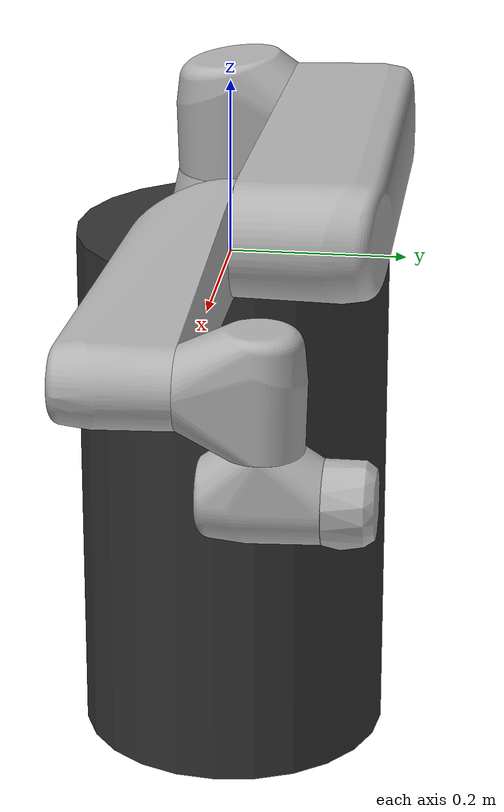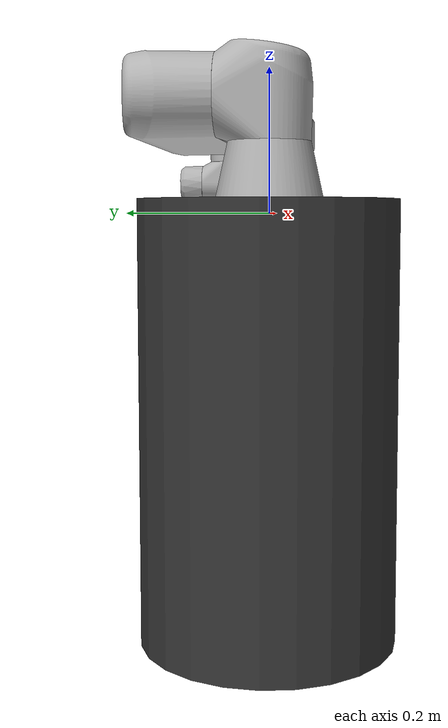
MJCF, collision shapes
<mujoco model="ur5e">
    <actuator>
        <!-- Physical limits of the actuator. -->
        <!-- Values taken from https://www.universal-robots.com/articles/ur-articles/max-joint-torques/ -->
        <motor ctrllimited="true" ctrlrange="-150.0 150.0" joint="ur5e_shoulder_pan_joint" name="ur5e_torq_j1"/>
        <motor ctrllimited="true" ctrlrange="-150.0 150.0" joint="ur5e_shoulder_lift_joint" name="ur5e_torq_j2"/>
        <motor ctrllimited="true" ctrlrange="-150.0 150.0" joint="ur5e_elbow_joint" name="ur5e_torq_j3"/>
        <motor ctrllimited="true" ctrlrange="-28.0 28.0" joint="ur5e_wrist_1_joint" name="ur5e_torq_j4"/>
        <motor ctrllimited="true" ctrlrange="-28.0 28.0" joint="ur5e_wrist_2_joint" name="ur5e_torq_j5"/>
        <motor ctrllimited="true" ctrlrange="-28.0 28.0" joint="ur5e_wrist_3_joint" name="ur5e_torq_j6"/>
    </actuator>
    <asset>
        <texture type="skybox" builtin="flat" rgb1="1 1 1" rgb2="1 1 1" width="100" height="100" />
        <mesh name="ur5e_base" file="meshes/base.stl" />
        <mesh name="ur5e_shoulder" file="meshes/shoulder.stl" />
        <mesh name="ur5e_upperarm" file="meshes/upperarm.stl" />
        <mesh name="ur5e_forearm" file="meshes/forearm.stl" />
        <mesh name="ur5e_wrist1" file="meshes/wrist1.stl" />
        <mesh name="ur5e_wrist2" file="meshes/wrist2.stl" />
        <mesh name="ur5e_wrist3" file="meshes/wrist3.stl" />
        <mesh name="ur5e_base_vis" file="meshes/base_vis.stl" />
        <mesh name="ur5e_shoulder_vis" file="meshes/shoulder_vis.stl" />
        <mesh name="ur5e_upperarm_vis" file="meshes/upperarm_vis.stl" />
        <mesh name="ur5e_forearm_vis" file="meshes/forearm_vis.stl" />
        <mesh name="ur5e_wrist1_vis" file="meshes/wrist1_vis.stl" />
        <mesh name="ur5e_wrist2_vis" file="meshes/wrist2_vis.stl" />
        <mesh name="ur5e_wrist3_vis" file="meshes/wrist3_vis.stl" />
        <mesh name="pedestal" file="meshes/pedestal.stl" />
    </asset>
    <worldbody>
        <body name="ur5e_base_link" pos="0 0 0">
            <!-- robot view -->
            <camera mode="fixed" name="ur5e_robotview" pos="1.0 0 0.4" quat="0.653 0.271 0.271 0.653"/>
            <inertial diaginertia="0 0 0" mass="0" pos="0 0 0"/>
            <!-- mount attached here -->
            <body name="pedestal" pos="0 0 0">
				<inertial diaginertia="6.0869 5.81635 4.20915" mass="60.864" pos="0 0 0" quat="0.659267 -0.259505 -0.260945 0.655692"/>
				<geom conaffinity="0" contype="0" group="1" mesh="pedestal" pos="0.26 0.345 -0.91488" quat="0.5 0.5 -0.5 -0.5" rgba="0.2 0.2 0.2 1" type="mesh" name="pedestal_col1"/>
				<geom pos="-0.02 0 -0.29" rgba="0.2 0.2 0.2 1" size="0.18 0.31" type="cylinder" name="pedestal_col2"/>
			</body>
            <geom type="mesh" contype="0" conaffinity="0" group="1" rgba="0.7 0.7 0.7 1" quat="0.707 0.707 0 0" mesh="ur5e_base_vis" />
            <geom type="mesh" rgba="0.7 0.7 0.7 1" mesh="ur5e_base" name="ur5e_base_col"/>
            <body name="ur5e_shoulder_link" pos="0 0 0.163">
                <inertial pos="0 0 0" mass="3.7" diaginertia="0.0102675 0.0102675 0.00666" />
                <joint name="ur5e_shoulder_pan_joint" pos="0 0 0" axis="0 0 1" limited="true" range="-6.28319 6.28319" damping="0.001" frictionloss="0.01" />
                <geom type="mesh" contype="0" conaffinity="0" group="1" rgba="0.7 0.7 0.7 1" quat="0.707 0.707 0 0" mesh="ur5e_shoulder_vis" name="ur5e_shoulder_visual" />
                <geom type="mesh" rgba="0.7 0.7 0.7 1" mesh="ur5e_shoulder" name="ur5e_shoulder_col" />
                <body name="ur5e_upper_arm_link" pos="0 0.138 0" quat="0.707107 0 0.707107 0">
                    <inertial pos="0 0 0.2125" mass="8.393" diaginertia="0.133886 0.133886 0.0151074" />
                    <joint name="ur5e_shoulder_lift_joint" pos="0 0 0" axis="0 1 0" limited="true" range="-6.28319 6.28319" damping="0.001" frictionloss="0.01" />
                    <geom type="mesh" contype="0" conaffinity="0" group="1" rgba="0.7 0.7 0.7 1" quat="0.707 0.707 0 0" mesh="ur5e_upperarm_vis" name="ur5e_upperarm_visual" />
                    <geom type="mesh" rgba="0.7 0.7 0.7 1" mesh="ur5e_upperarm" name="ur5e_upperarm_col"/>
                    <body name="ur5e_forearm_link" pos="0 -0.131 0.425">
                        <inertial pos="0 0 0.196" mass="2.275" diaginertia="0.0311796 0.0311796 0.004095" />
                        <joint name="ur5e_elbow_joint" pos="0 0 0" axis="0 1 0" limited="true" range="-3.14159 3.14159" damping="0.001" frictionloss="0.01" />
                        <geom type="mesh" contype="0" conaffinity="0" group="1" rgba="0.7 0.7 0.7 1" quat="0.707 0.707 0 0" mesh="ur5e_forearm_vis" name="ur5e_forearm_visual" />
                        <geom type="mesh" rgba="0.7 0.7 0.7 1" mesh="ur5e_forearm" name="ur5e_forearm_col"/>
                        <body name="ur5e_wrist_1_link" pos="0 0 0.392" quat="0.707107 0 0.707107 0">
                            <inertial pos="0 0.127 0" mass="1.219" diaginertia="0.0025599 0.0025599 0.0021942" />
                            <joint name="ur5e_wrist_1_joint" pos="0 0 0" axis="0 1 0" limited="true" range="-6.28319 6.28319" damping="0.001" frictionloss="0.01" />
                            <geom type="mesh" contype="0" conaffinity="0" group="1" rgba="0.7 0.7 0.7 1" quat="0.707 0.707 0 0" mesh="ur5e_wrist1_vis" name="ur5e_wrist1_visual" />
                            <geom type="mesh" rgba="0.7 0.7 0.7 1" mesh="ur5e_wrist1" name="ur5e_wrist1_col" />
                            <body name="ur5e_wrist_2_link" pos="0 0.127 0">
                                <inertial pos="0 0 0.1" mass="1.219" diaginertia="0.0025599 0.0025599 0.0021942" />
                                <joint name="ur5e_wrist_2_joint" pos="0 0 0" axis="0 0 1" limited="true" range="-6.28319 6.28319" damping="0.001" frictionloss="0.01" />
                                <geom type="mesh" contype="0" conaffinity="0" group="1" rgba="0.7 0.7 0.7 1" quat="0.707 0.707 0 0" mesh="ur5e_wrist2_vis" name="ur5e_wrist2_visual" />
                                <geom type="mesh" rgba="0.7 0.7 0.7 1" mesh="ur5e_wrist2" name="ur5e_wrist2_col" />
                                <body name="ur5e_wrist_3_link" pos="0 0 0.1">
                                    <inertial pos="0 0.0771683 0" quat="0.707107 0 0 0.707107" mass="0.1889" diaginertia="0.000132134 9.90863e-05 9.90863e-05" />
                                    <joint name="ur5e_wrist_3_joint" pos="0 0 0" axis="0 1 0" limited="true" range="-6.28319 6.28319" damping="0.001" frictionloss="0.01" />
                                    <geom type="mesh" contype="0" conaffinity="0" group="1" rgba="0.7 0.7 0.7 1" quat="0.707 0.707 0 0" mesh="ur5e_wrist3_vis" name="ur5e_wrist3_visual" />
                                    <geom type="mesh" rgba="0.7 0.7 0.7 1" mesh="ur5e_wrist3" name="ur5e_wrist3_col" />
                                    <geom size="0.005 0.005 0.005" pos="0 0.09 0" quat="0.707107 0 0 0.707107" type="box" name="ur5e_wrist3_col2"/>
                                    <body name="ur5e_right_hand" pos="0 0.098 0" quat="0.707 -0.707 0 0" >
                                        <!-- This camera points out from the eef. -->
                                        <camera mode="fixed" name="ur5e_eye_in_hand" pos="0.05 0 0" quat="0 0.707108 0.707108 0" fovy="75"/>
                                        <!-- To add gripper -->
                                    </body>
                                </body>
                            </body>
                        </body>
                    </body>
                </body>
            </body>
        </body>
    </worldbody>
</mujoco>
